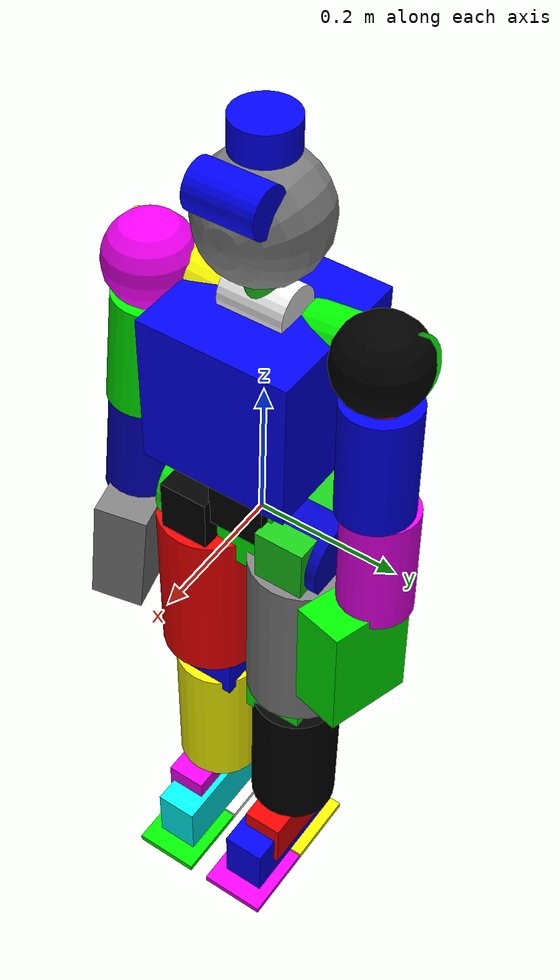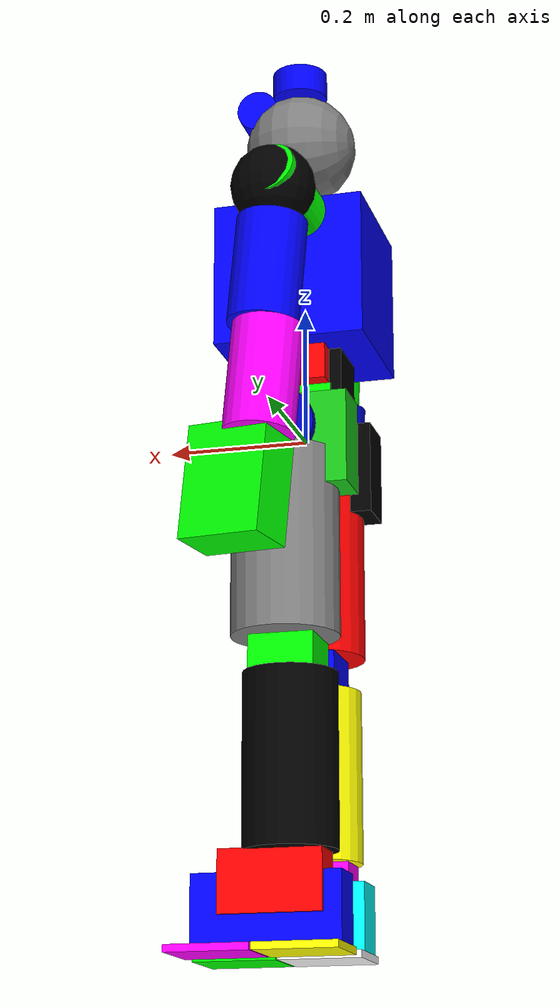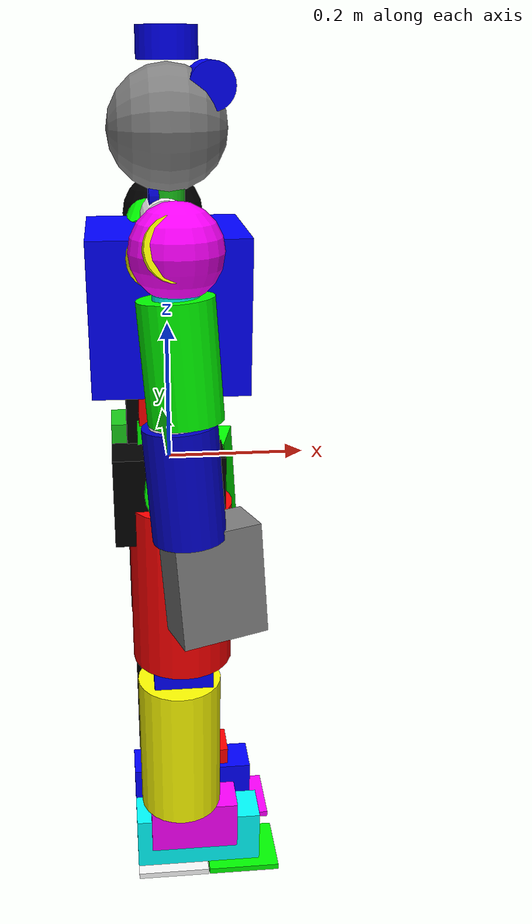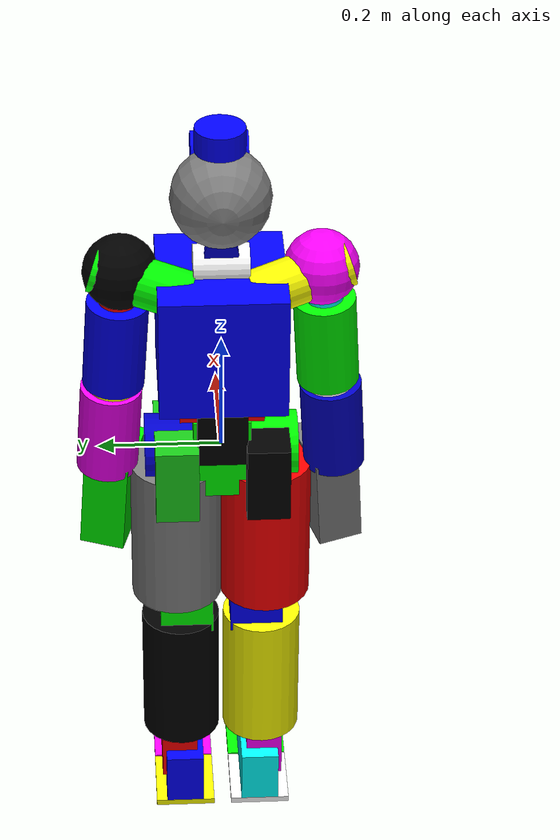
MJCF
<mujoco model="stickBot">
  <compiler angle="radian"/>
  <worldbody>
    <body name="root_link">
      <inertial pos="0.00131675 0.000355722 0.212213" quat="0.999969 -0.00197143 0.00661264 -0.00382259" mass="16.1368" diaginertia="2.62122 2.61922 2.13268"/>
      <joint name="floating_joint" type="free" limited="false" actuatorfrclimited="false"/>
      <geom name="root_link_visual" size="0.0465 0.0475 0.071" quat="0.707107 0 0 -0.707107" type="box" contype="0" conaffinity="0" group="1" density="0" rgba="0 1 0 1"/>
      <geom name="torso_1_visual" size="0.0405 0.062 0.07525" pos="0 0 0.075" quat="0.707107 0 0 -0.707107" type="box" contype="0" conaffinity="0" group="1" density="0" rgba="0 0 0 1"/>
      <geom name="torso_2_visual" size="0.0678 0.04485 0.0669" pos="0 0 0.1394" quat="0.707107 0 0 -0.707107" type="box" contype="0" conaffinity="0" group="1" density="0" rgba="1 0 0 1"/>
      <geom name="chest_visual" size="0.10205 0.1076 0.1046" pos="0 0 0.228358" quat="0.707107 0 0 -0.707107" type="box" contype="0" conaffinity="0" group="1" density="0" rgba="0 0 1 1"/>
      <geom name="neck_1_visual" size="0.033 0.0445" pos="0.00021151 0 0.34027" quat="0.707107 -0.707107 0 0" type="cylinder" contype="0" conaffinity="0" group="1" density="0" rgba="1 1 1 1"/>
      <geom name="neck_2_visual" size="0.027 0.0065" pos="-0.0151385 0 0.36927" quat="0.5 -0.5 0.5 -0.5" type="cylinder" contype="0" conaffinity="0" group="1" density="0" rgba="0 0 0.8 1"/>
      <geom name="neck_3_visual" size="0.0225 0.045" pos="0.00486151 0 0.391771" quat="0.707107 0 0 -0.707107" type="cylinder" contype="0" conaffinity="0" group="1" density="0" rgba="0.1 0.8 0.1 1"/>
      <geom name="head_visual" size="0.08" pos="0.00486151 0 0.457921" quat="0.5 -0.5 0.5 -0.5" contype="0" conaffinity="0" group="1" density="0"/>
      <geom name="camera_tilt_visual" size="0.03 0.045" pos="0.0603745 0.00017 0.509846" quat="3.27579e-05 3.27581e-05 0.707105 -0.707108" type="cylinder" contype="0" conaffinity="0" group="1" density="0" rgba="0 0 1 1"/>
      <geom name="lidar_visual" size="0.04 0.02" pos="0.00603151 0.00115 0.559721" type="cylinder" contype="0" conaffinity="0" group="1" density="0" rgba="0 0 1 1"/>
      <body name="r_shoulder_1" pos="-0.03 -0.055555 0.29997" quat="0.983506 -0.125212 -0.0164845 0.129481">
        <inertial pos="0 -0.07445 0" mass="1.38072" diaginertia="0.01 0.01 0.01"/>
        <joint name="r_shoulder_pitch" pos="0 0 0" axis="0 1 0" limited="true" range="-1.53589 0.226893" damping="2"/>
        <geom name="r_shoulder_1_visual" size="0.04 0.07845" pos="0 -0.07445 0" quat="0.485098 0.512419 0.479256 -0.521939" type="cylinder" contype="0" conaffinity="0" group="1" density="0" rgba="1 1 0 1"/>
        <body name="r_shoulder_2" pos="0.00748901 -0.1115 0.000402786" quat="0.995835 0.0871243 -0.0267684 0.00234193">
          <inertial pos="-0.00305096 9.75647e-08 -0.0286392" quat="0.998592 1.69137e-06 0.0530405 -8.98378e-08" mass="0.549329" diaginertia="0.0205674 0.0205674 0.02"/>
          <joint name="r_shoulder_roll" pos="0 0 0" axis="-1 4.2105e-08 2.46305e-08" limited="true" range="0.20944 2.79253" damping="2"/>
          <geom name="r_shoulder_2_visual" size="0.06" quat="0.603545 0.00311654 0.0471955 -0.795925" contype="0" conaffinity="0" group="1" density="0" rgba="1 0 1 1"/>
          <geom name="r_shoulder_3_visual" size="0.03 0.015" pos="-0.00684995 2.1905e-07 -0.0643" quat="0.603545 0.00311654 0.0471955 -0.795925" type="cylinder" contype="0" conaffinity="0" group="1" density="0" rgba="0 1 1 1"/>
          <body name="r_upper_arm" pos="-0.00684995 6.40883e-07 -0.0767999">
            <inertial pos="0 0 -0.05705" mass="1.96045" diaginertia="0.01 0.01 0.01"/>
            <joint name="r_shoulder_yaw" pos="0 0 0" axis="-3.78762e-08 2.8052e-08 1" limited="true" range="-0.872665 1.39626" damping="2"/>
            <geom name="r_upper_arm_visual" size="0.05 0.07905" pos="0 0 -0.05705" quat="0.603337 0 0 -0.797486" type="cylinder" contype="0" conaffinity="0" group="1" density="0" rgba="0 1 0 1"/>
            <body name="r_elbow_1" pos="0.00999993 0.00149964 -0.1237">
              <inertial pos="-0.014313 -0.000805461 -0.112239" quat="0.588619 -0.0560695 -0.0525394 0.804751" mass="1.35433" diaginertia="0.0466957 0.0466639 0.040032"/>
              <joint name="r_elbow" pos="0 0 0" axis="2.49496e-07 -1 2.79425e-08" limited="true" range="-0.0523599 1.309" damping="2"/>
              <geom name="r_elbow_1_visual" size="0.04" pos="-0.02 0 -0.02" quat="0.603545 0.00311654 0.0471955 -0.795925" contype="0" conaffinity="0" group="1" density="0" rgba="1 1 1 1"/>
              <geom name="r_forearm_visual" size="0.05 0.07905" pos="-0.0199999 -0.00199965 -0.0953101" quat="0.603337 0 0 -0.797486" type="cylinder" contype="0" conaffinity="0" group="1" density="0" rgba="0 0 0.8 1"/>
              <geom name="r_forearm_collision" size="0.05 0.07905" pos="-0.0199999 -0.00199965 -0.0953101" quat="0.603337 0 0 -0.797486" type="cylinder" rgba="0 0 0.8 1"/>
              <geom name="r_wrist_1_visual" size="0.011 0.02" pos="-0.0136999 -0.00400709 -0.1628" quat="0.0640871 0.782371 0.0678384 -0.615781" type="cylinder" contype="0" conaffinity="0" group="1" density="0" rgba="0.1 0.8 0.1 1"/>
              <geom name="r_hand_visual" size="0.062 0.0368 0.08105" pos="0.00999996 0.0029923 -0.24385" type="box" contype="0" conaffinity="0" group="1" density="0"/>
              <geom name="r_hand_collision" size="0.062 0.0368 0.08105" pos="0.00999996 0.0029923 -0.24385" type="box"/>
            </body>
          </body>
        </body>
      </body>
      <body name="l_shoulder_1" pos="-0.03 0.055555 0.29997" quat="0.983506 0.125212 -0.0164845 -0.129481">
        <inertial pos="0 0.07445 0" mass="1.37669" diaginertia="0.01 0.01 0.01"/>
        <joint name="l_shoulder_pitch" pos="0 0 0" axis="0 1 0" limited="true" range="-1.53589 0.226893" damping="2"/>
        <geom name="l_shoulder_1_visual" size="0.04 0.07845" pos="0 0.07445 0" quat="0.485098 -0.512419 0.479256 0.521939" type="cylinder" contype="0" conaffinity="0" group="1" density="0" rgba="0 1 0 1"/>
        <body name="l_shoulder_2" pos="0.00748901 0.1115 0.000402786" quat="0.995835 -0.0871243 -0.0267684 -0.00234193">
          <inertial pos="-0.00192682 1.60899e-07 -0.0284806" quat="0.99943 2.81664e-06 0.0337689 -9.51693e-08" mass="0.546898" diaginertia="0.0205605 0.0205605 0.02"/>
          <joint name="l_shoulder_roll" pos="0 0 0" axis="1 2.03483e-07 -4.02302e-08" limited="true" range="0.20944 2.79253" damping="2"/>
          <geom name="l_shoulder_2_visual" size="0.06" quat="0.795925 -0.0471955 -0.00311656 -0.603545" contype="0" conaffinity="0" group="1" density="0" rgba="0 0 0 1"/>
          <geom name="l_shoulder_3_visual" size="0.03 0.015" pos="-0.00435013 3.63257e-07 -0.0643" quat="0.795925 -0.0471955 -0.00311656 -0.603545" type="cylinder" contype="0" conaffinity="0" group="1" density="0" rgba="1 0 0 1"/>
          <body name="l_upper_arm" pos="-0.00435013 -6.01952e-08 -0.0768">
            <inertial pos="0 0 -0.05705" mass="1.96833" diaginertia="0.01 0.01 0.01"/>
            <joint name="l_shoulder_yaw" pos="0 0 0" axis="2.22765e-08 -4.39379e-08 -1" limited="true" range="-0.872665 1.39626" damping="2"/>
            <geom name="l_upper_arm_visual" size="0.05 0.07905" pos="0 0 -0.05705" quat="0.797486 0 0 -0.603337" type="cylinder" contype="0" conaffinity="0" group="1" density="0" rgba="0 0 1 1"/>
            <body name="l_elbow_1" pos="0.00999993 -0.00149965 -0.1237">
              <inertial pos="-0.0142815 0.000810948 -0.112111" quat="0.8039 -0.053065 -0.0566185 0.589681" mass="1.35825" diaginertia="0.0466904 0.0466582 0.0400325"/>
              <joint name="l_elbow" pos="0 0 0" axis="-8.81182e-08 -1 4.40473e-08" limited="true" range="-0.0523599 1.309" damping="2"/>
              <geom name="l_elbow_1_visual" size="0.04" pos="-0.02 0 -0.02" quat="0.795925 -0.0471955 -0.00311656 -0.603545" contype="0" conaffinity="0" group="1" density="0" rgba="1 1 0 1"/>
              <geom name="l_forearm_visual" size="0.05 0.07905" pos="-0.0199999 0.00199964 -0.0953101" quat="0.797486 0 0 -0.603337" type="cylinder" contype="0" conaffinity="0" group="1" density="0" rgba="1 0 1 1"/>
              <geom name="l_forearm_collision" size="0.05 0.07905" pos="-0.0199999 0.00199964 -0.0953101" quat="0.797486 0 0 -0.603337" type="cylinder" rgba="1 0 1 1"/>
              <geom name="l_wrist_1_visual" size="0.011 0.02" pos="-0.0133999 0.00400654 -0.1628" quat="0.0640871 0.782371 0.0678384 -0.615781" type="cylinder" contype="0" conaffinity="0" group="1" density="0" rgba="0 1 1 1"/>
              <geom name="l_hand_visual" size="0.062 0.0368 0.08105" pos="0.0103 -0.00299285 -0.24385" type="box" contype="0" conaffinity="0" group="1" density="0" rgba="0 1 0 1"/>
              <geom name="l_hand_collision" size="0.062 0.0368 0.08105" pos="0.0103 -0.00299285 -0.24385" type="box" rgba="0 1 0 1"/>
            </body>
          </body>
        </body>
      </body>
      <body name="r_hip_1" pos="0.0216 -0.04055 0">
        <inertial pos="-0.01 -0.041826 -0.01" mass="2.13429" diaginertia="0.01 0.01 0.01"/>
        <joint name="r_hip_pitch" pos="0 0 0" axis="0 -1 0" limited="true" range="-0.785398 2.00713" damping="2"/>
        <geom name="r_hip_1_visual" size="0.0535 0.041826" pos="-0.01 -0.041826 -0.01" quat="0.5 0.5 0.5 -0.5" type="cylinder" contype="0" conaffinity="0" group="1" density="0" rgba="0 1 0 1"/>
        <body name="r_hip_2" pos="-0.0473 -0.0331 -0.009">
          <inertial pos="0.0291726 0 -0.0976103" quat="0.706337 -0.0329792 -0.0329792 0.706337" mass="3.94684" diaginertia="0.0449673 0.0449105 0.0200567"/>
          <joint name="r_hip_roll" pos="0 0 0" axis="-1 0 0" limited="true" range="-0.174533 2.00713" damping="2"/>
          <geom name="r_hip_2_visual" size="0.0351 0.0789 0.06575" pos="0.02 0 -0.02" quat="0.707107 0 0 -0.707107" type="box" contype="0" conaffinity="0" group="1" density="0" rgba="0 0 0 1"/>
          <geom name="r_hip_3_visual" size="0.075 0.1296" pos="0.0367 0 -0.1613" quat="0.707107 0 0 -0.707107" type="cylinder" contype="0" conaffinity="0" group="1" density="0" rgba="1 0 0 1"/>
          <body name="r_upper_leg" pos="0.0367 0.015 -0.2038">
            <inertial pos="0 0 -0.07" mass="0.980692" diaginertia="0.01 0.01 0.01"/>
            <joint name="r_hip_yaw" pos="0 0 0" axis="0 0 -1" limited="true" range="-1.39626 1.39626" damping="2"/>
            <geom name="r_upper_leg_visual" size="0.0454 0.0799 0.0439" pos="0 0 -0.07" quat="0.707107 -0.707107 0 0" type="box" contype="0" conaffinity="0" group="1" density="0" rgba="0 0 1 1"/>
            <body name="r_lower_leg" pos="0.015 -0.0249 -0.1062">
              <inertial pos="-0.02 0.015 -0.15" mass="5.07411" diaginertia="0.0297152 0.0297152 0.010719"/>
              <joint name="r_knee" pos="0 0 0" axis="0 -1 0" limited="true" range="-1.22173 0.0872665" damping="2"/>
              <geom name="r_lower_leg_visual" size="0.065 0.12" pos="-0.02 0.015 -0.15" quat="0.707107 0 0 -0.707107" type="cylinder" contype="0" conaffinity="0" group="1" density="0" rgba="1 1 0 1"/>
              <body name="r_ankle_1" pos="0 0.0005 -0.295989">
                <inertial pos="0 0.01 -0.015" mass="0.346177" diaginertia="0.01 0.01 0.01"/>
                <joint name="r_ankle_pitch" pos="0 0 0" axis="0 1 0" limited="true" range="-0.785398 0.785398" damping="2"/>
                <geom name="r_ankle_1_visual" size="0.0426035 0.0300837 0.07127" pos="0 0.01 -0.015" quat="0.707107 0 0.707107 0" type="box" contype="0" conaffinity="0" group="1" density="0" rgba="1 0 1 1"/>
                <body name="r_ankle_2" pos="-0.05275 0.0182 -0.035">
                  <inertial pos="0.0689704 0 -0.0436578" quat="0.664208 -0.242545 -0.242545 0.664208" mass="2.3588" diaginertia="1.03294 1.03194 1.03099"/>
                  <joint name="r_ankle_roll" pos="0 0 0" axis="-1 0 0" limited="true" range="-0.436332 0.436332" damping="2"/>
                  <geom name="r_ankle_2_visual" size="0.04635 0.0317 0.10275" pos="0.06 0 -0.014" quat="0.707107 0 0.707107 0" type="box" contype="0" conaffinity="0" group="1" density="0" rgba="0 1 1 1"/>
                  <geom name="r_foot_front_visual" size="0.05 0.0585 0.00515" pos="0.13525 0 -0.0658" quat="0.707107 0 0 -0.707107" type="box" contype="0" conaffinity="0" group="1" density="0" rgba="0 1 0 1"/>
                  <geom name="r_foot_front_collision" size="0.05 0.0585 0.00515" pos="0.13525 0 -0.0658" quat="0.707107 0 0 -0.707107" type="box" rgba="0 1 0 1"/>
                  <geom name="r_foot_rear_visual" size="0.05 0.0585 0.00515" pos="0.016 0 -0.0658" quat="0.707107 0 0 -0.707107" type="box" contype="0" conaffinity="0" group="1" density="0" rgba="1 1 1 1"/>
                  <geom name="r_foot_rear_collision" size="0.05 0.0585 0.00515" pos="0.016 0 -0.0658" quat="0.707107 0 0 -0.707107" type="box" rgba="1 1 1 1"/>
                </body>
              </body>
            </body>
          </body>
        </body>
      </body>
      <body name="l_hip_1" pos="0.0216 0.04045 0">
        <inertial pos="-0.01 0.041826 -0.01" mass="2.10846" diaginertia="0.01 0.01 0.01"/>
        <joint name="l_hip_pitch" pos="0 0 0" axis="0 -1 0" limited="true" range="-0.785398 2.00713" damping="2"/>
        <geom name="l_hip_1_visual" size="0.0535 0.041826" pos="-0.01 0.041826 -0.01" quat="0.5 0.5 0.5 -0.5" type="cylinder" contype="0" conaffinity="0" group="1" density="0" rgba="0 0 0.8 1"/>
        <body name="l_hip_2" pos="-0.04725 0.0331 -0.009">
          <inertial pos="0.0291699 0 -0.0975869" quat="0.706338 -0.0329738 -0.0329738 0.706338" mass="3.95042" diaginertia="0.0449957 0.0449389 0.0200568"/>
          <joint name="l_hip_roll" pos="0 0 0" axis="1 0 0" limited="true" range="-0.174533 2.00713" damping="2"/>
          <geom name="l_hip_2_visual" size="0.0351 0.0789 0.06575" pos="0.02 0 -0.02" quat="0.707107 0 0 -0.707107" type="box" contype="0" conaffinity="0" group="1" density="0" rgba="0.1 0.8 0.1 1"/>
          <geom name="l_hip_3_visual" size="0.075 0.1296" pos="0.0367 0 -0.1613" quat="0.707107 0 0 -0.707107" type="cylinder" contype="0" conaffinity="0" group="1" density="0"/>
          <body name="l_upper_leg" pos="0.0367 -0.015 -0.2038">
            <inertial pos="0 0 -0.07" mass="0.968264" diaginertia="0.01 0.01 0.01"/>
            <joint name="l_hip_yaw" pos="0 0 0" axis="0 0 1" limited="true" range="-1.39626 1.39626" damping="2"/>
            <geom name="l_upper_leg_visual" size="0.0454 0.0799 0.0439" pos="0 0 -0.07" quat="0.707107 -0.707107 0 0" type="box" contype="0" conaffinity="0" group="1" density="0" rgba="0 1 0 1"/>
            <body name="l_lower_leg" pos="0.015 0.0249 -0.1062">
              <inertial pos="-0.02 -0.015 -0.15" mass="5.06305" diaginertia="0.0296505 0.0296505 0.0106957"/>
              <joint name="l_knee" pos="0 0 0" axis="0 -1 0" limited="true" range="-1.22173 0.0872665" damping="2"/>
              <geom name="l_lower_leg_visual" size="0.065 0.12" pos="-0.02 -0.015 -0.15" quat="0.707107 0 0 -0.707107" type="cylinder" contype="0" conaffinity="0" group="1" density="0" rgba="0 0 0 1"/>
              <body name="l_ankle_1" pos="0 -0.0005 -0.295989">
                <inertial pos="0 -0.01 -0.015" mass="0.346177" diaginertia="0.01 0.01 0.01"/>
                <joint name="l_ankle_pitch" pos="0 0 0" axis="0 1 0" limited="true" range="-0.785398 0.785398" damping="2"/>
                <geom name="l_ankle_1_visual" size="0.0426035 0.0300837 0.07127" pos="0 -0.01 -0.015" quat="0.707107 0 0.707107 0" type="box" contype="0" conaffinity="0" group="1" density="0" rgba="1 0 0 1"/>
                <body name="l_ankle_2" pos="-0.05275 -0.0182 -0.035">
                  <inertial pos="0.0689444 0 -0.0436087" quat="0.664561 -0.241576 -0.241576 0.664561" mass="2.36117" diaginertia="1.03294 1.03194 1.03099"/>
                  <joint name="l_ankle_roll" pos="0 0 0" axis="1 0 0" limited="true" range="-0.436332 0.436332" damping="2"/>
                  <geom name="l_ankle_2_visual" size="0.04635 0.0317 0.10275" pos="0.06 0 -0.014" quat="0.707107 0 0.707107 0" type="box" contype="0" conaffinity="0" group="1" density="0" rgba="0 0 1 1"/>
                  <geom name="l_foot_rear_visual" size="0.05 0.0585 0.00515" pos="0.016 0 -0.0658" quat="0.707107 0 0 -0.707107" type="box" contype="0" conaffinity="0" group="1" density="0" rgba="1 1 0 1"/>
                  <geom name="l_foot_rear_collision" size="0.05 0.0585 0.00515" pos="0.016 0 -0.0658" quat="0.707107 0 0 -0.707107" type="box" rgba="1 1 0 1"/>
                  <geom name="l_foot_front_visual" size="0.05 0.0585 0.00515" pos="0.13525 0 -0.0658" quat="0.707107 0 0 -0.707107" type="box" contype="0" conaffinity="0" group="1" density="0" rgba="1 0 1 1"/>
                  <geom name="l_foot_front_collision" size="0.05 0.0585 0.00515" pos="0.13525 0 -0.0658" quat="0.707107 0 0 -0.707107" type="box" rgba="1 0 1 1"/>
                </body>
              </body>
            </body>
          </body>
        </body>
      </body>
    </body>
  </worldbody>
</mujoco>
